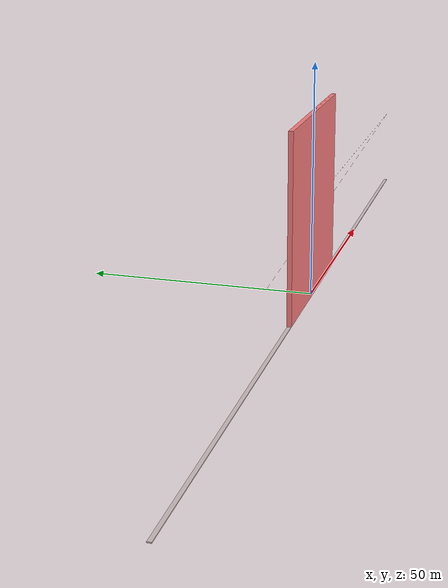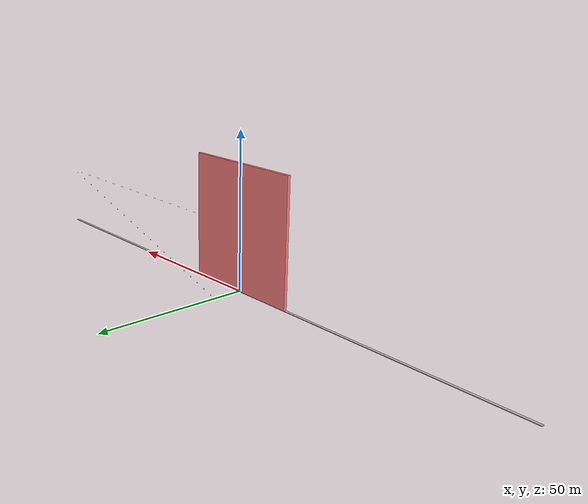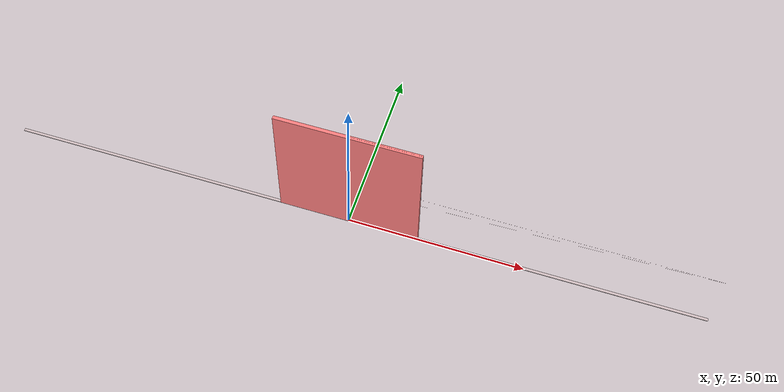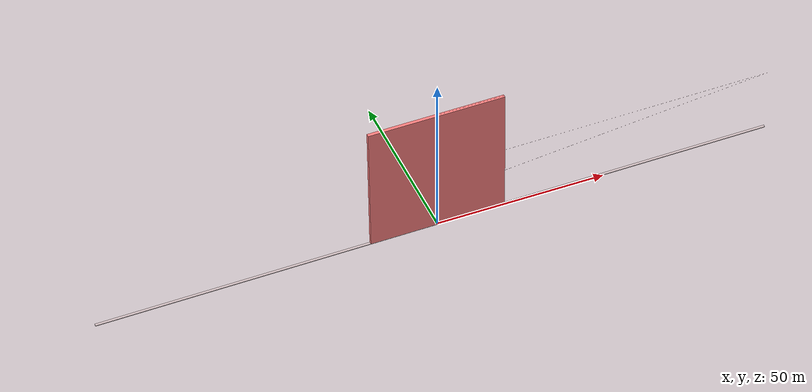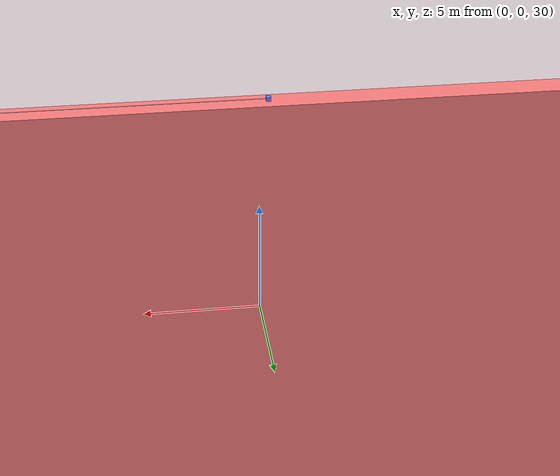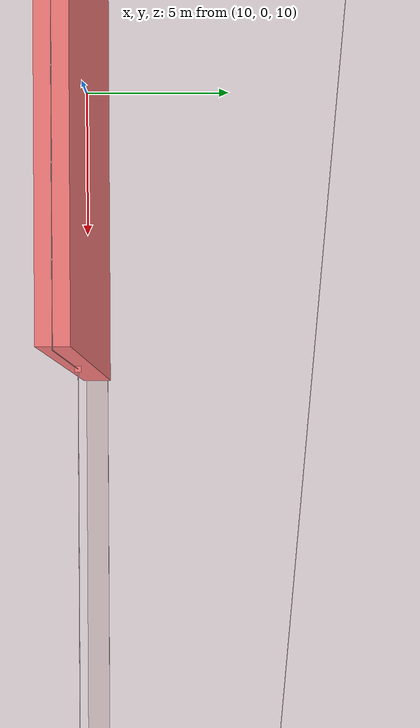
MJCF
<mujoco>
            <compiler angle="radian" autolimits="true" />
            <compiler meshdir="asset" texturedir="asset" assetdir="asset" />
            <option gravity="0 0 -9.81" />
            <default class="main">
            <geom friction="0 0 0" solimp="0.9 1 0.001 0.01 20" solref="0.02 1" condim="1" />
        </default>

        <visual>
            <headlight diffuse="0.7 0.7 0.7" ambient="0.5 0.5 0.5" />
            <global offwidth="1920" offheight="1080" />
        </visual>

        <asset>
            <texture type="skybox" builtin="gradient" rgb1="0 0.5 0.7" rgb2="0 0 0" width="512" height="512" />
            <texture type="2d" name="checks1" builtin="checker" rgb1="1 1 1" rgb2="0 0 0" width="256" height="256" />
            <material name="test_color" texture="checks1" texuniform="true" texrepeat="2 2" />
            <material name="reflectance" reflectance=".4" />
            <texture name="grid" type="2d" builtin="checker" width="512" height="512" rgb1="1.0 0.6235 0.1098" rgb2="1.0 0.749 0.4118" />
            <texture name="white-texture-background" type="2d" file="/home/aryansatpathy/DevStuff/cmu/PHO/sim/geom_sources/fixed_sources/rocket/rocket.white-texture-background.png" content_type="image/png" />
            <material name="pulley" texture="grid" texrepeat="2 2" texuniform="true" />

        </asset>
        <worldbody><body name="massboxplaneentity_0.plane" pos="0.0 0.0 0.0" quat="0.9999884816759264 0.0 -0.004799637014974645 0.0"><geom name="massboxplaneentity_0.plane.geom" type="box" pos="0 0 0" size="100 0.4 0.1" material="reflectance" rgba="0.82745098 0.75686275 0.76470588 1" mass="1.0" quat="0 0 0 1" condim="1" contype="1" conaffinity="1" />
<site name="massboxplaneentity_0.plane.sensor" pos="0 0 0" quat="0.9999884816759264 -0.0 0.004799637014974645 -0.0" />
<site name="massboxplaneentity_0.plane.left" pos="-100.05 0 0.2" quat="0.9999884816759264 -0.0 0.004799637014974645 -0.0" />
<site name="massboxplaneentity_0.plane.right" pos="100.05 0 0.2" quat="0.9999884816759264 -0.0 0.004799637014974645 -0.0" />
<site name="massboxplaneentity_0.plane.right_connect" pos="100.1 0.0 20.1" quat="0.9999884816759264 -0.0 0.004799637014974645 -0.0" />
</body>
<body name="massboxplaneentity_0.box" pos="-0.19294318559424284 0.0 20.099073932077886" quat="0.9999884816759264 0.0 -0.004799637014974645 0.0">
<geom name="massboxplaneentity_0.box.geom" type="box" pos="0 0 0" size="20.0 0.5 20.0" rgba="1.0 0.5 0.5 1.0" mass="1.56" quat="0 0 0 1" condim="1" contype="1" conaffinity="1" />
<site name="massboxplaneentity_0.box.top-1" pos="0.0 0 20.0" quat="0.9999884816759264 -0.0 0.004799637014974645 -0.0" />
<site name="massboxplaneentity_0.box.sensor" pos="0 0 0" quat="0.9999884816759264 -0.0 0.004799637014974645 -0.0" />
<site name="massboxplaneentity_0.box.center" pos="0 0 0" quat="0.9999884816759264 -0.0 0.004799637014974645 -0.0" />
<site name="massboxplaneentity_0.box.left" pos="-20.0 0 0" quat="0.9999884816759264 -0.0 0.004799637014974645 -0.0" />
<site name="massboxplaneentity_0.box.right" pos="20.0 0 0" quat="0.9999884816759264 -0.0 0.004799637014974645 -0.0" />
<site name="massboxplaneentity_0.box.bottom" pos="0 0 -20.0" quat="0.9999884816759264 -0.0 0.004799637014974645 -0.0" />
<site name="massboxplaneentity_0.box.pulley_left" pos="-20.1 0.0 20.1" quat="0.9999884816759264 -0.0 0.004799637014974645 -0.0" />
<site name="massboxplaneentity_0.box.pulley_right" pos="20.1 0.0 20.1" quat="0.9999884816759264 -0.0 0.004799637014974645 -0.0" />
<joint name="massboxplaneentity_0.box.joint" type="free" axis="1 1 1" pos="0 0 0" />
</body>
<body name="massboxplaneentity_0.top_mass" pos="-0.3858863711884857 0.0 40.19814786415577" quat="0.9999884816759264 0.0 -0.004799637014974645 0.0">
<geom name="massboxplaneentity_0.top_mass.geom" type="box" pos="0 0 0" size="0.1 0.1 0.1" rgba="0.5 0.5 1.0 1.0" mass="0.6" quat="0 0 0 1" condim="1" contype="1" conaffinity="1" />
<site name="massboxplaneentity_0.top_mass.top-1" pos="0.0 0 0.1" quat="0.9999884816759264 -0.0 0.004799637014974645 -0.0" />
<site name="massboxplaneentity_0.top_mass.sensor" pos="0 0 0" quat="0.9999884816759264 -0.0 0.004799637014974645 -0.0" />
<site name="massboxplaneentity_0.top_mass.center" pos="0 0 0" quat="0.9999884816759264 -0.0 0.004799637014974645 -0.0" />
<site name="massboxplaneentity_0.top_mass.left" pos="-0.1 0 0" quat="0.9999884816759264 -0.0 0.004799637014974645 -0.0" />
<site name="massboxplaneentity_0.top_mass.right" pos="0.1 0 0" quat="0.9999884816759264 -0.0 0.004799637014974645 -0.0" />
<site name="massboxplaneentity_0.top_mass.bottom" pos="0 0 -0.1" quat="0.9999884816759264 -0.0 0.004799637014974645 -0.0" />
<joint name="massboxplaneentity_0.top_mass.joint" type="free" axis="1 1 1" pos="0 0 0" />
</body>
<body name="massboxplaneentity_0.right_hanging_mass" pos="19.9051708301374 0.0 20.392012510369035" quat="0.9999884816759264 0.0 -0.004799637014974645 0.0">
<geom name="massboxplaneentity_0.right_hanging_mass.geom" type="box" pos="0 0 0" size="0.1 0.1 0.1" rgba="1.0 0.5 0.5 1.0" mass="0.28" quat="0 0 0 1" condim="1" contype="1" conaffinity="1" />
<site name="massboxplaneentity_0.right_hanging_mass.top-1" pos="0.0 0 0.1" quat="0.9999884816759264 -0.0 0.004799637014974645 -0.0" />
<site name="massboxplaneentity_0.right_hanging_mass.sensor" pos="0 0 0" quat="0.9999884816759264 -0.0 0.004799637014974645 -0.0" />
<site name="massboxplaneentity_0.right_hanging_mass.center" pos="0 0 0" quat="0.9999884816759264 -0.0 0.004799637014974645 -0.0" />
<site name="massboxplaneentity_0.right_hanging_mass.left" pos="-0.1 0 0" quat="0.9999884816759264 -0.0 0.004799637014974645 -0.0" />
<site name="massboxplaneentity_0.right_hanging_mass.right" pos="0.1 0 0" quat="0.9999884816759264 -0.0 0.004799637014974645 -0.0" />
<site name="massboxplaneentity_0.right_hanging_mass.bottom" pos="0 0 -0.1" quat="0.9999884816759264 -0.0 0.004799637014974645 -0.0" />
<joint name="massboxplaneentity_0.right_hanging_mass.joint" type="free" axis="1 1 1" pos="0 0 0" />
</body>
<body name="constantforcefixedpulley_1" pos="0.0 10.0 0.0" quat="1.0 0.0 0.0 0.0"><site name="constantforcefixedpulley_1.site" pos="0 0 0.0" quat="1.0 -0.0 -0.0 -0.0" />
</body>

        </worldbody><tendon>
<spatial name="tendon_force_0" width="0.01" rgba="0.9686 0.8392 0.8784 1" limited="false" solimplimit="0.99 1 0.001 0.01 20" solreflimit="0.02 1">
<site site="massboxplaneentity_0.box.center" />
<site site="massboxplaneentity_0.plane.right_connect" />
<site site="constantforcefixedpulley_1.site" />
</spatial>
</tendon>
<tendon>
<spatial name="massboxplaneentity_0.massboxplaneentity_0.right_tendon-0" width="0.01" rgba="0.9686 0.8392 0.8784 1" range="0 40.1" limited="true" solimplimit="0.99 1 0.001 0.01 20" solreflimit="0.02 1">
<site site="massboxplaneentity_0.top_mass.center" />
<site site="massboxplaneentity_0.box.pulley_right" />
<site site="massboxplaneentity_0.right_hanging_mass.center" />
</spatial>
</tendon>

        <sensor>

        </sensor>
        <custom>

        </custom>
        <contact>

        </contact>
        <actuator>
            <general name="constantforcefixedpulley_1.actuator" tendon="tendon_force_0" gainprm="0.0" biasprm="-0.28" biastype="affine" />

        </actuator>
    </mujoco>
